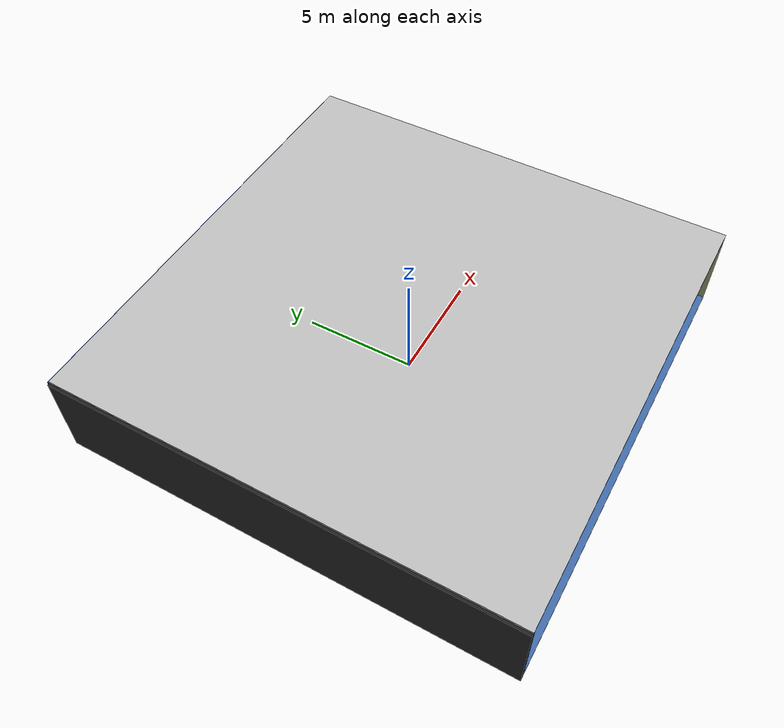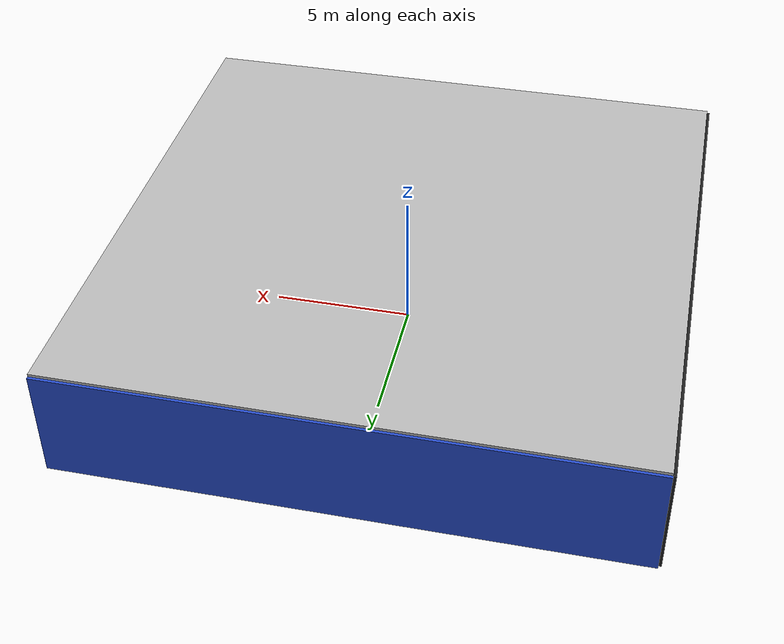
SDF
<sdf version="1.4">
 <world name="default">
  <physics type="ode">
   <max_step_size>0.001</max_step_size>
   <real_time_factor>1</real_time_factor>
   <real_time_update_rate>1000</real_time_update_rate>
   <gravity>0 0 -9.8</gravity>
  </physics>
  <scene><ambient>0.4 0.4 0.4 1</ambient><background>0.7 0.7 0.7 1</background><shadows>1</shadows></scene>
  <model name="Surrounding">
   <static>1</static>
   <link name="Ceiling">
    <collision name="Ceiling_Collision"><geometry><box><size>20 20 0.1</size></box></geometry></collision>
    <visual name="Ceiling_Visual">
     <geometry><box><size>20 20 0.1</size></box></geometry>
     <material>
      <script><uri>file://media/materials/scripts/gazebo.material</uri><name>Gazebo/LightOff</name></script>
     </material>
    </visual>
    <pose>0 0 4.05 0 0 0</pose>
   </link>
   <link name="Wall_South">
    <collision name="Wall_South_Collision">
     <geometry><box><size>20 0 4</size></box></geometry>
     <pose>0 0 2 0 -0 0</pose>
    </collision>
    <visual name="Wall_South_Visual">
     <pose>0 0 2 0 -0 0</pose>
     <geometry><box><size>20 0 4</size></box></geometry>
     <material>
      <script><uri>file://media/materials/scripts/gazebo.material</uri><name>Gazebo/BlueTransparent</name></script>
     </material>
    </visual>
    <velocity_decay><linear>0</linear><angular>0</angular></velocity_decay>
    <pose>0 -10 0 0 -0 0</pose>
   </link>
   <link name="Wall_East">
    <collision name="Wall_21_Collision">
     <geometry><box><size>20 0 4</size></box></geometry>
     <pose>0 0 2 0 -0 0</pose>
    </collision>
    <visual name="Wall_21_Visual">
     <pose>0 0 2 0 -0 0</pose>
     <geometry><box><size>20 0 4</size></box></geometry>
     <material>
      <script><uri>file://media/materials/scripts/gazebo.material</uri><name>Gazebo/YellowGlow</name></script>
     </material>
    </visual>
    <velocity_decay><linear>0</linear><angular>0</angular></velocity_decay>
    <pose>10 0 0 0 -0 1.5708</pose>
   </link>
   <link name="Wall_North">
    <collision name="Wall_22_Collision">
     <geometry><box><size>20 0.2 4</size></box></geometry>
     <pose>0 0 2 0 -0 0</pose>
    </collision>
    <visual name="Wall_22_Visual">
     <pose>0 0 2 0 -0 0</pose>
     <geometry><box><size>20 0.2 4</size></box></geometry>
     <material>
      <script><uri>file://media/materials/scripts/gazebo.material</uri><name>Gazebo/Blue</name></script>
     </material>
    </visual>
    <velocity_decay><linear>0</linear><angular>0</angular></velocity_decay>
    <pose>0 10 0 0 -0 0</pose>
   </link>
   <link name="Wall_West">
    <collision name="Wall_23_Collision">
     <geometry><box><size>20 0.2 4</size></box></geometry>
     <pose>0 0 2 0 -0 0</pose>
    </collision>
    <visual name="Wall_23_Visual">
     <pose>0 0 2 0 -0 0</pose>
     <geometry><box><size>20 0.2 4</size></box></geometry>
     <material>
      <script><uri>file://media/materials/scripts/gazebo.material</uri><name>Gazebo/FlatBlack</name></script>
     </material>
    </visual>
    <velocity_decay><linear>0</linear><angular>0</angular></velocity_decay>
    <pose>-10 0 0 0 0 -1.5708</pose>
   </link>
   <link name="Ground_link">
    <collision name="collision">
     <pose>0 0 .05 0 -0 0</pose>
     <geometry><box><size>20 20 0.1</size></box></geometry>
    </collision>
    <visual name="visual">
     <pose>0 0 .05 0 -0 0</pose>
     <geometry><box><size>20 20 0.1</size></box></geometry>
     <material>
      <script><uri>file://media/materials/scripts/gazebo.material</uri><name>Gazebo/SkyBlue</name></script>
     </material>
    </visual>
   </link>
   <static>1</static>
  </model>
  <spherical_coordinates>
   <surface_model>EARTH_WGS84</surface_model>
   <latitude_deg>0</latitude_deg>
   <longitude_deg>0</longitude_deg>
   <elevation>0</elevation>
   <heading_deg>0</heading_deg>
  </spherical_coordinates>
  <light name="lightball_0" type="diffuse">
   <diffuse>0.8 0.8 0.8 1</diffuse>
   <specular>0.2 0.2 0.2 1</specular>
   <attenuation>
    <range>100</range>
    <constant>0.7</constant>
    <linear>0.01</linear>
    <quadratic>0.001</quadratic>
   </attenuation>
   <direction>-0.5 0.1 -0.9</direction>
   <pose>2.83176008779 3.9415341812 1.12487165167 0 0 0</pose>
  </light>
  <light name="lightball_1" type="diffuse">
   <diffuse>0.8 0.8 0.8 1</diffuse>
   <specular>0.2 0.2 0.2 1</specular>
   <attenuation>
    <range>100</range>
    <constant>0.7</constant>
    <linear>0.01</linear>
    <quadratic>0.001</quadratic>
   </attenuation>
   <direction>-0.5 0.1 -0.9</direction>
   <pose>-3.30064887802 5.66168319169 1.81551853436 0 0 0</pose>
  </light>
  <light name="lightball_2" type="diffuse">
   <diffuse>0.8 0.8 0.8 1</diffuse>
   <specular>0.2 0.2 0.2 1</specular>
   <attenuation>
    <range>100</range>
    <constant>0.7</constant>
    <linear>0.01</linear>
    <quadratic>0.001</quadratic>
   </attenuation>
   <direction>-0.5 0.1 -0.9</direction>
   <pose>-8.45470754198 5.88986611086 3.81344435971 0 0 0</pose>
  </light>
  <light name="lightball_3" type="diffuse">
   <diffuse>0.8 0.8 0.8 1</diffuse>
   <specular>0.2 0.2 0.2 1</specular>
   <attenuation>
    <range>100</range>
    <constant>0.7</constant>
    <linear>0.01</linear>
    <quadratic>0.001</quadratic>
   </attenuation>
   <direction>-0.5 0.1 -0.9</direction>
   <pose>-7.05752357443 7.26734914393 3.71345798277 0 0 0</pose>
  </light>
  <light name="lightball_4" type="diffuse">
   <diffuse>0.8 0.8 0.8 1</diffuse>
   <specular>0.2 0.2 0.2 1</specular>
   <attenuation>
    <range>100</range>
    <constant>0.7</constant>
    <linear>0.01</linear>
    <quadratic>0.001</quadratic>
   </attenuation>
   <direction>-0.5 0.1 -0.9</direction>
   <pose>-7.15835857798 -8.91049081029 3.17828214205 0 0 0</pose>
  </light>
  <include><uri>model://table</uri><pose>-6.81806247443 -4.66713391888 0 0 0 2.17501880357</pose></include>
  <include>
   <uri>model://robocup_3Dsim_goal</uri>
   <pose>-8.13496595436 1.7958606387 0 0 0 2.5303118127</pose>
  </include>
  <include><uri>model://cabinet</uri><pose>-5.17683181723 -6.86647854504 0 0 0 1.33402259459</pose></include>
  <include>
   <uri>model://construction_cone</uri>
   <pose>-1.20631825544 -4.85447040199 0 0 0 2.92506282353</pose>
  </include>
  <include><uri>model://cabinet</uri><pose>-1.34945190297 4.87026087197 0 0 0 1.17834517849</pose></include>
  <include>
   <uri>model://robocup_3Dsim_goal</uri>
   <pose>0.797204505192 0.825723298591 0 0 0 1.96747476894</pose>
  </include>
  <include>
   <uri>model://textured_shapes</uri>
   <pose>1.45177553755 3.77347817193 0 0 0 1.55373480796</pose>
  </include>
  <include><uri>model://table</uri><pose>4.98114656649 6.84602178263 0 0 0 0.64244331565</pose></include>
 </world>
</sdf>

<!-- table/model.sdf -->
<sdf version="1.5">
  <model name="table">
    <static>true</static>
    <link name="link">
      <collision name="surface">
        <pose>0 0 1.0 0 0 0</pose>
        <geometry>
          <box>
            <size>1.5 0.8 0.03</size>
          </box>
        </geometry>
        <surface>
          <friction>
            <ode>
              <mu>0.6</mu>
              <mu2>0.6</mu2>
            </ode>
          </friction>
        </surface>
      </collision>
      <visual name="visual1">
        <pose>0 0 1.0 0 0 0</pose>
        <geometry>
          <box>
            <size>1.5 0.8 0.03</size>
          </box>
        </geometry>
        <material>
          <script>
            <uri>model://media/materials/scripts/gazebo.material</uri>
            <name>Gazebo/Wood</name>
          </script>
        </material>
      </visual>
      <collision name="front_left_leg">
        <pose>0.68 0.38 0.5 0 0 0</pose>
        <geometry>
          <cylinder>
            <radius>0.02</radius>
            <length>1.0</length>
          </cylinder>
        </geometry>
      </collision>
      <visual name="front_left_leg">
        <pose>0.68 0.38 0.5 0 0 0</pose>
        <geometry>
          <cylinder>
            <radius>0.02</radius>
            <length>1.0</length>
          </cylinder>
        </geometry>
        <material>
          <script>
            <uri>model://media/materials/scripts/gazebo.material</uri>
            <name>Gazebo/Grey</name>
          </script>
        </material>
      </visual>
      <collision name="front_right_leg">
        <pose>0.68 -0.38 0.5 0 0 0</pose>
        <geometry>
          <cylinder>
            <radius>0.02</radius>
            <length>1.0</length>
          </cylinder>
        </geometry>
      </collision>
      <visual name="front_right_leg">
        <pose>0.68 -0.38 0.5 0 0 0</pose>
        <geometry>
          <cylinder>
            <radius>0.02</radius>
            <length>1.0</length>
          </cylinder>
        </geometry>
        <material>
          <script>
            <uri>model://media/materials/scripts/gazebo.material</uri>
            <name>Gazebo/Grey</name>
          </script>
        </material>
      </visual>
      <collision name="back_right_leg">
        <pose>-0.68 -0.38 0.5 0 0 0</pose>
        <geometry>
          <cylinder>
            <radius>0.02</radius>
            <length>1.0</length>
          </cylinder>
        </geometry>
      </collision>
      <visual name="back_right_leg">
        <pose>-0.68 -0.38 0.5 0 0 0</pose>
        <geometry>
          <cylinder>
            <radius>0.02</radius>
            <length>1.0</length>
          </cylinder>
        </geometry>
        <material>
          <script>
            <uri>model://media/materials/scripts/gazebo.material</uri>
            <name>Gazebo/Grey</name>
          </script>
        </material>
      </visual>
      <collision name="back_left_leg">
        <pose>-0.68 0.38 0.5 0 0 0</pose>
        <geometry>
          <cylinder>
            <radius>0.02</radius>
            <length>1.0</length>
          </cylinder>
        </geometry>
      </collision>
      <visual name="back_left_leg">
        <pose>-0.68 0.38 0.5 0 0 0</pose>
        <geometry>
          <cylinder>
            <radius>0.02</radius>
            <length>1.0</length>
          </cylinder>
        </geometry>
        <material>
          <script>
            <uri>model://media/materials/scripts/gazebo.material</uri>
            <name>Gazebo/Grey</name>
          </script>
        </material>
      </visual>
    </link>
  </model>
</sdf>

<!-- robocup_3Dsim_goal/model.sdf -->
<sdf version="1.5">
  <model name="robocup_3d_goal">
    <static>true</static>
    <link name="left_post">
      <pose>0 1.05 0.45 0 0 0</pose>
      <collision name="collision">
        <geometry>
          <cylinder>
            <radius>0.05</radius>
            <length>0.9</length>
          </cylinder>
        </geometry>
      </collision>
      <visual name="visual">
        <geometry>
          <cylinder>
            <radius>0.05</radius>
            <length>0.9</length>
          </cylinder>
        </geometry>
        <material>
          <script>
            <uri>file://media/materials/scripts/gazebo.material</uri>
            <name>Gazebo/ZincYellow</name>
          </script>
        </material>
      </visual>
    </link>
    <link name="left_support_horiz_lower">
      <pose>0.30 1.05 0.01 0 0 0</pose>
      <collision name="collision">
        <geometry>
          <box>
            <size>0.50 0.02 0.02</size>
          </box>
        </geometry>
      </collision>
      <visual name="visual">
        <geometry>
          <box>
            <size>0.50 0.02 0.02</size>
          </box>
        </geometry>
        <material>
          <script>
            <uri>file://media/materials/scripts/gazebo.material</uri>
            <name>Gazebo/White</name>
          </script>
        </material>
      </visual>
    </link>
    <link name="left_support_horiz_upper">
      <pose>0.30 1.05 0.79 0 0 0</pose>
      <collision name="collision">
        <geometry>
          <box>
            <size>0.50 0.02 0.02</size>
          </box>
        </geometry>
      </collision>
      <visual name="visual">
        <geometry>
          <box>
            <size>0.50 0.02 0.02</size>
          </box>
        </geometry>
        <material>
          <script>
            <uri>file://media/materials/scripts/gazebo.material</uri>
            <name>Gazebo/White</name>
          </script>
        </material>
      </visual>
    </link>
    <link name="left_support_vertical">
      <pose>0.56 1.05 0.4 0 1.5708 0</pose>
      <collision name="collision">
        <geometry>
          <box>
            <size>0.80 0.02 0.02</size>
          </box>
        </geometry>
      </collision>
      <visual name="visual">
        <geometry>
          <box>
            <size>0.80 0.02 0.02</size>
          </box>
        </geometry>
        <material>
          <script>
            <uri>file://media/materials/scripts/gazebo.material</uri>
            <name>Gazebo/White</name>
          </script>
        </material>
      </visual>
    </link>
    <link name="right_support_horiz_lower">
      <pose>0.30 -1.05 0.01 0 0 0</pose>
      <collision name="collision">
        <geometry>
          <box>
            <size>0.50 0.02 0.02</size>
          </box>
        </geometry>
      </collision>
      <visual name="visual">
        <geometry>
          <box>
            <size>0.50 0.02 0.02</size>
          </box>
        </geometry>
        <material>
          <script>
            <uri>file://media/materials/scripts/gazebo.material</uri>
            <name>Gazebo/White</name>
          </script>
        </material>
      </visual>
    </link>
    <link name="right_support_horiz_upper">
      <pose>0.30 -1.05 0.79 0 0 0</pose>
      <collision name="collision">
        <geometry>
          <box>
            <size>0.50 0.02 0.02</size>
          </box>
        </geometry>
      </collision>
      <visual name="visual">
        <geometry>
          <box>
            <size>0.50 0.02 0.02</size>
          </box>
        </geometry>
        <material>
          <script>
            <uri>file://media/materials/scripts/gazebo.material</uri>
            <name>Gazebo/White</name>
          </script>
        </material>
      </visual>
    </link>
    <link name="right_support_vertical">
      <pose>0.56 -1.05 0.4 0 1.5708 0</pose>
      <collision name="collision">
        <geometry>
          <box>
            <size>0.80 0.02 0.02</size>
          </box>
        </geometry>
      </collision>
      <visual name="visual">
        <geometry>
          <box>
            <size>0.80 0.02 0.02</size>
          </box>
        </geometry>
        <material>
          <script>
            <uri>file://media/materials/scripts/gazebo.material</uri>
            <name>Gazebo/White</name>
          </script>
        </material>
      </visual>
    </link>
    <link name="center_support_horiz_lower">
      <pose>0.56 0 0.01 0 1.5708 0</pose>
      <collision name="collision">
        <geometry>
          <box>
            <size>0.02 2.08 0.02</size>
          </box>
        </geometry>
      </collision>
      <visual name="visual">
        <geometry>
          <box>
            <size>0.02 2.08 0.02</size>
          </box>
        </geometry>
        <material>
          <script>
            <uri>file://media/materials/scripts/gazebo.material</uri>
            <name>Gazebo/White</name>
          </script>
        </material>
      </visual>
    </link>
    <link name="center_support_horiz_upper">
      <pose>0.56 0 0.79 0 1.5708 0</pose>
      <collision name="collision">
        <geometry>
          <box>
            <size>0.02 2.08 0.02</size>
          </box>
        </geometry>
      </collision>
      <visual name="visual">
        <geometry>
          <box>
            <size>0.02 2.08 0.02</size>
          </box>
        </geometry>
        <material>
          <script>
            <uri>file://media/materials/scripts/gazebo.material</uri>
            <name>Gazebo/White</name>
          </script>
        </material>
      </visual>
    </link>
    <link name="right_post">
      <pose>0 -1.05 0.45 0 0 0</pose>
      <collision name="collision">
        <geometry>
          <cylinder>
            <radius>0.05</radius>
            <length>0.9</length>
          </cylinder>
        </geometry>
      </collision>
      <visual name="visual">
        <geometry>
          <cylinder>
            <radius>0.05</radius>
            <length>0.9</length>
          </cylinder>
        </geometry>
        <material>
          <script>
            <uri>file://media/materials/scripts/gazebo.material</uri>
            <name>Gazebo/ZincYellow</name>
          </script>
        </material>
      </visual>
    </link>
    <link name="crossbar">
      <pose>0 0 0.85 1.57 1.57 0</pose>
      <collision name="collision">
        <geometry>
          <cylinder>
            <radius>0.05</radius>
            <length>2.0</length>
          </cylinder>
        </geometry>
      </collision>
      <visual name="visual">
        <geometry>
          <cylinder>
            <radius>0.05</radius>
            <length>2.0</length>
          </cylinder>
        </geometry>
        <material>
          <script>
            <uri>file://media/materials/scripts/gazebo.material</uri>
            <name>Gazebo/ZincYellow</name>
          </script>
        </material>
      </visual>
    </link>
    <link name="center_net">
      <pose>0.56 0 0.40 0 0 0</pose>
      <collision name="collision">
        <geometry>
          <box>
            <size>0.01 2.1 0.80</size>
          </box>
        </geometry>
      </collision>
      <visual name="visual">
        <geometry>
          <box>
            <size>0.01 2.1 0.80</size>
          </box>
        </geometry>
        <material>
          <script>
            <uri>model://../model_source/models/robocup09_spl_field/materials/scripts/</uri>
            <uri>model://../model_source/models/robocup09_spl_field/materials/textures/</uri>
            <name>RoboCup/Net</name>
          </script>
        </material>
      </visual>
    </link>
    <link name="left_net">
      <pose>0.30 1.05 0.40 0 0 0</pose>
      <collision name="collision">
        <geometry>
          <box>
            <size>0.50 0.01 0.76</size>
          </box>
        </geometry>
      </collision>
      <visual name="visual">
        <geometry>
          <box>
            <size>0.50 0.01 0.76</size>
          </box>
        </geometry>
        <material>
          <script>
            <uri>model://../model_source/models/robocup09_spl_field/materials/scripts/</uri>
            <uri>model://../model_source/models/robocup09_spl_field/materials/textures/</uri>
            <name>RoboCup/Net</name>
          </script>
        </material>
      </visual>
    </link>
    <link name="right_net">
      <pose>0.30 -1.05 0.40 0 0 0</pose>
      <collision name="collision">
        <geometry>
          <box>
            <size>0.50 0.01 0.76</size>
          </box>
        </geometry>
      </collision>
      <visual name="visual">
        <geometry>
          <box>
            <size>0.50 0.01 0.76</size>
          </box>
        </geometry>
        <material>
          <script>
            <uri>model://../model_source/models/robocup09_spl_field/materials/scripts/</uri>
            <uri>model://../model_source/models/robocup09_spl_field/materials/textures/</uri>
            <name>RoboCup/Net</name>
          </script>
        </material>
      </visual>
    </link>
  </model>
</sdf>

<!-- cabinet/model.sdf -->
<sdf version="1.5">
  <model name="cabinet">
    <static>true</static>
    <link name="cabinet_bottom_plate">
      <inertial>
        <pose>0 0 -1 0 0 0</pose>
        <inertia>
          <ixx>2.050000</ixx>
          <ixy>0</ixy>
          <ixz>0</ixz>
          <iyy>2.050000</iyy>
          <iyz>0</iyz>
          <izz>2.050000</izz>
        </inertia>
        <mass>25.000000</mass>
      </inertial>
      <collision name="cabinet_bottom_plate_geom">
        <pose>0 0 0.010000 0 0 0</pose>
        <geometry>
          <box>
            <size>0.450000 0.450000 0.020000</size>
          </box>
        </geometry>
      </collision>
      <visual name="cabinet_bottom_plate_geom_visual">
        <pose>0 0 0.010000 0 0 0</pose>
        <geometry>
          <box>
            <size>0.450000 0.450000 0.020000</size>
          </box>
        </geometry>
        <material>
          <script>
            <uri>model://media/materials/scripts/gazebo.material</uri>
            <name>Gazebo/Wood</name>
          </script>
        </material>
      </visual>
      <collision name="cabinet_bottom_plate_geom_cabinet_back_plate">
        <pose>0.235000 0 0.510000 0 0 0</pose>
        <geometry>
          <box>
            <size>0.020000 0.450000 1.020000</size>
          </box>
        </geometry>
      </collision>
      <visual name="cabinet_bottom_plate_geom_cabinet_back_plate_visual">
        <pose>0.235000 0 0.510000 0 0 0</pose>
        <geometry>
          <box>
            <size>0.020000 0.450000 1.020000</size>
          </box>
        </geometry>
        <material>
          <script>
            <uri>model://media/materials/scripts/gazebo.material</uri>
            <name>Gazebo/Wood</name>
          </script>
        </material>
      </visual>
      <collision name="cabinet_bottom_plate_geom_cabinet_left_plate">
        <pose>0 0.235000 0.510000 0 0 0</pose>
        <geometry>
          <box>
            <size>0.450000 0.020000 1.020000</size>
          </box>
        </geometry>
      </collision>
      <visual name="cabinet_bottom_plate_geom_cabinet_left_plate_visual">
        <pose>0 0.235000 0.510000 0 0 0</pose>
        <geometry>
          <box>
            <size>0.450000 0.020000 1.020000</size>
          </box>
        </geometry>
        <material>
          <script>
            <uri>model://media/materials/scripts/gazebo.material</uri>
            <name>Gazebo/Wood</name>
          </script>
        </material>
      </visual>
      <collision name="cabinet_bottom_plate_geom_cabinet_middle_plate">
        <pose>0 0 0.510000 0 0 0</pose>
        <geometry>
          <box>
            <size>0.450000 0.450000 0.020000</size>
          </box>
        </geometry>
      </collision>
      <visual name="cabinet_bottom_plate_geom_cabinet_middle_plate_visual">
        <pose>0 0 0.510000 0 0 0</pose>
        <geometry>
          <box>
            <size>0.450000 0.450000 0.020000</size>
          </box>
        </geometry>
        <material>
          <script>
            <uri>model://media/materials/scripts/gazebo.material</uri>
            <name>Gazebo/Wood</name>
          </script>
        </material>
      </visual>
      <collision name="cabinet_bottom_plate_geom_cabinet_right_plate">
        <pose>0 -0.235000 0.510000 0 0 0</pose>
        <geometry>
          <box>
            <size>0.450000 0.020000 1.020000</size>
          </box>
        </geometry>
      </collision>
      <visual name="cabinet_bottom_plate_geom_cabinet_right_plate_visual">
        <pose>0 -0.235000 0.510000 0 0 0</pose>
        <geometry>
          <box>
            <size>0.450000 0.020000 1.020000</size>
          </box>
        </geometry>
        <material>
          <script>
            <uri>model://media/materials/scripts/gazebo.material</uri>
            <name>Gazebo/Wood</name>
          </script>
        </material>
      </visual>
      <collision name="cabinet_bottom_plate_geom_cabinet_top_plate">
        <pose>0 0 1.010000 0 0 0</pose>
        <geometry>
          <box>
            <size>0.450000 0.450000 0.020000</size>
          </box>
        </geometry>
      </collision>
      <visual name="cabinet_bottom_plate_geom_cabinet_top_plate_visual">
        <pose>0 0 1.010000 0 0 0</pose>
        <geometry>
          <box>
            <size>0.450000 0.450000 0.020000</size>
          </box>
        </geometry>
        <material>
          <script>
            <uri>model://media/materials/scripts/gazebo.material</uri>
            <name>Gazebo/Wood</name>
          </script>
        </material>
      </visual>
    </link>
  </model>
</sdf>

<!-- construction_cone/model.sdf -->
<sdf version="1.5">
  <model name="Construction Cone">
    <link name="link">
      <collision name="collision">
        <geometry>
          <mesh>
            <scale>10 10 10</scale>
            <uri>file://isr-testbed/construction_cone/meshes/construction_cone.dae</uri>
          </mesh>
        </geometry>
      </collision>
      <visual name="visual">
        <geometry>
          <mesh>
            <scale>10 10 10</scale>
            <uri>file://isr-testbed/construction_cone/meshes/construction_cone.dae</uri>
          </mesh>
        </geometry>
      </visual>
    </link>
  </model>
</sdf>

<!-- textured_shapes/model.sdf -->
<sdf version="1.6">
  <model name="textured_shapes">
    <pose>0 0 0.5 0 0 0</pose>
    <link name="box">
      <pose>0 -1.5 0 0 0 0</pose>
      <collision name="collision">
        <geometry>
          <box>
            <size>1 1 1</size>
          </box>
        </geometry>
      </collision>
      <visual name="visual">
        <geometry>
          <box>
            <size>1 1 1</size>
          </box>
        </geometry>
        <material>
          <script>
            <uri>model://../model_source/models/textured_shapes/materials/scripts</uri>
            <uri>model://../model_source/models/textured_shapes/materials/textures</uri>
            <name>TexturedShape/Squares</name>
          </script>
        </material>
      </visual>
    </link>
    <link name="sphere">
      <collision name="collision">
        <geometry>
          <sphere>
            <radius>0.5</radius>
          </sphere>
        </geometry>
      </collision>
      <visual name="visual">
        <geometry>
          <sphere>
            <radius>0.5</radius>
          </sphere>
        </geometry>
        <material>
          <script>
            <uri>model://../model_source/models/textured_shapes/materials/scripts</uri>
            <uri>model://../model_source/models/textured_shapes/materials/textures</uri>
            <name>TexturedShape/Squares</name>
          </script>
        </material>
      </visual>
    </link>
    <link name="cylinder">
      <pose>0 1.5 0 0 0 0</pose>
      <collision name="collision">
        <geometry>
          <cylinder>
            <radius>0.5</radius>
            <length>1</length>
          </cylinder>
        </geometry>
      </collision>
      <visual name="visual">
        <geometry>
          <cylinder>
            <radius>0.5</radius>
            <length>1</length>
          </cylinder>
        </geometry>
        <material>
          <script>
            <uri>model://../model_source/models/textured_shapes/materials/scripts</uri>
            <uri>model://../model_source/models/textured_shapes/materials/textures</uri>
            <name>TexturedShape/Squares</name>
          </script>
        </material>
      </visual>
    </link>
  </model>
</sdf>
